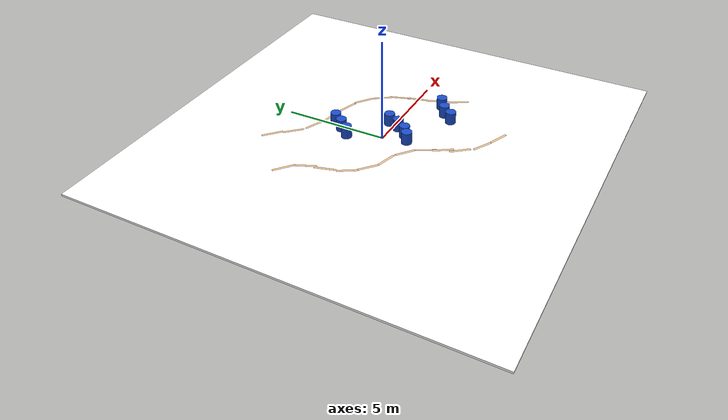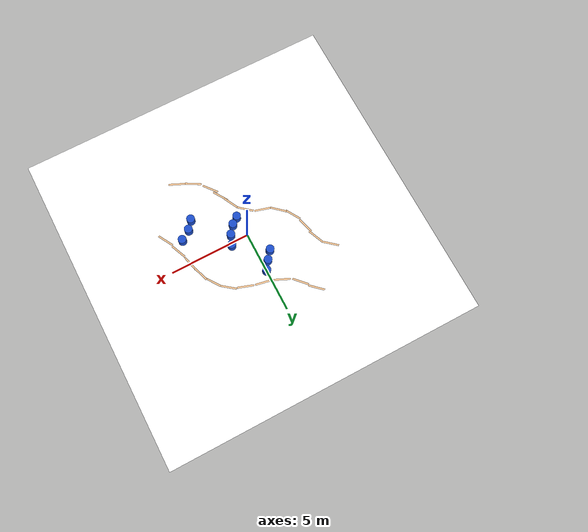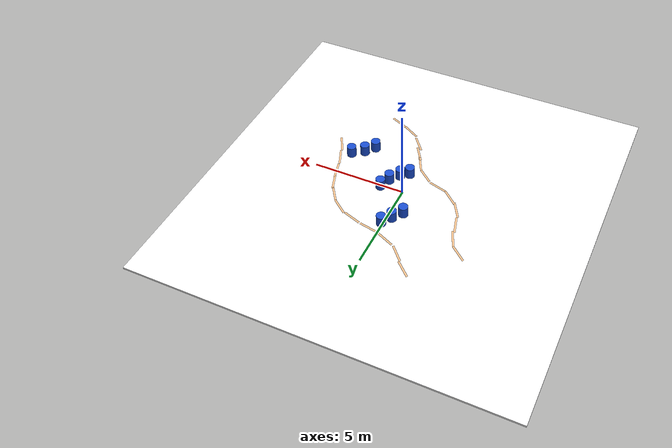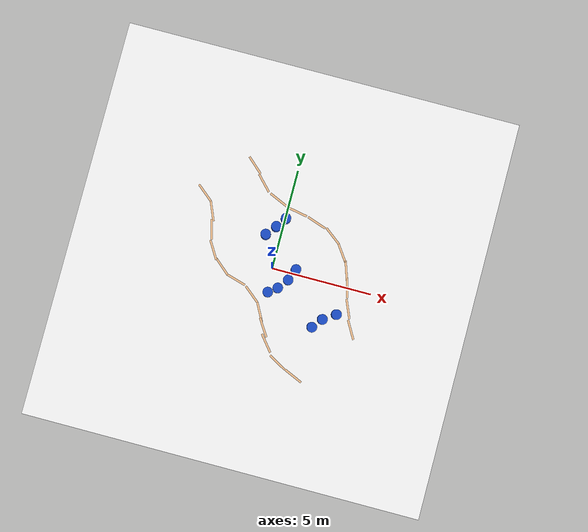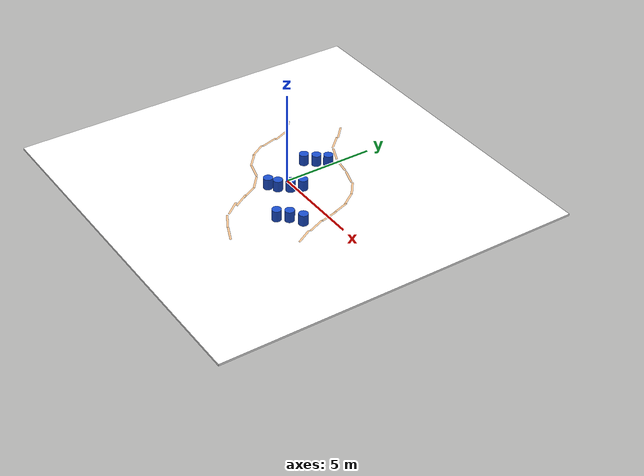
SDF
<sdf version='1.9'>
  <world name='chicane1'>
    <plugin name='ignition::gazebo::systems::Physics' filename='ignition-gazebo-physics-system'/>
    <plugin name='ignition::gazebo::systems::UserCommands' filename='ignition-gazebo-user-commands-system'/>
    <plugin name='ignition::gazebo::systems::SceneBroadcaster' filename='ignition-gazebo-scene-broadcaster-system'/>
    <plugin name='ignition::gazebo::systems::Contact' filename='libignition-gazebo-contact-system.so'/>
    <physics type='ode'>
      <max_step_size>0.001</max_step_size>
      <real_time_update_rate>1000</real_time_update_rate>
      <real_time_factor>1</real_time_factor>
    </physics>
    <scene>
      <ambient>0.1 0.1 0.1 0.1</ambient>
      <background>0.8 0.8 0.8 1</background>
      <grid>true</grid>
      <shadows>true</shadows>
    </scene>
    <gui fullscreen='false'>
      <camera name='user_camera'>
        <pose>-4 -16 4 0 0.3 1.2</pose>
        <view_controller>orbit</view_controller>
      </camera>
    </gui>
    <gravity>0 0 -9.8</gravity>
    <magnetic_field>6e-06 2.3e-05 -4.2e-05</magnetic_field>
    <atmosphere type='adiabatic'/>
    <include>
      <uri>file:///home/andrew/IGVC/ros2_ws/install/littleblue_sim/share/littleblue_sim/worlds/chicane1/custom_models/floor</uri>
      <name>floor</name>
      <pose>0 0 0 0 -0 0</pose>
    </include>
    <include>
      <uri>file:///home/andrew/IGVC/ros2_ws/install/littleblue_sim/share/littleblue_sim/models/barrel</uri>
      <name>barrel_1</name>
      <pose>-0.72731 1.5 0.1 0 -0 0</pose>
    </include>
    <include>
      <uri>file:///home/andrew/IGVC/ros2_ws/install/littleblue_sim/share/littleblue_sim/models/barrel</uri>
      <name>barrel_2</name>
      <pose>-0.326132 2 0.1 0 -0 0</pose>
    </include>
    <include>
      <uri>file:///home/andrew/IGVC/ros2_ws/install/littleblue_sim/share/littleblue_sim/models/barrel</uri>
      <name>barrel_3</name>
      <pose>0.025317 2.5 0.1 0 -0 0</pose>
    </include>
    <include>
      <uri>file:///home/andrew/IGVC/ros2_ws/install/littleblue_sim/share/littleblue_sim/models/barrel</uri>
      <name>barrel_4</name>
      <pose>0.093756 -1.2 0.1 0 -0 0</pose>
    </include>
    <include>
      <uri>file:///home/andrew/IGVC/ros2_ws/install/littleblue_sim/share/littleblue_sim/models/barrel</uri>
      <name>barrel_5</name>
      <pose>0.513101 -0.881516 0.1 0 -0 0</pose>
    </include>
    <include>
      <uri>file:///home/andrew/IGVC/ros2_ws/install/littleblue_sim/share/littleblue_sim/models/barrel</uri>
      <name>barrel_6</name>
      <pose>0.9 -0.375588 0.1 0 -0 0</pose>
    </include>
    <include>
      <uri>file:///home/andrew/IGVC/ros2_ws/install/littleblue_sim/share/littleblue_sim/models/barrel</uri>
      <name>barrel_7</name>
      <pose>1.14 0.210238 0.1 0 -0 0</pose>
    </include>
    <include>
      <uri>file:///home/andrew/IGVC/ros2_ws/install/littleblue_sim/share/littleblue_sim/models/barrel</uri>
      <name>barrel_8</name>
      <pose>3.6 -1.4 0.1 0 -0 0</pose>
    </include>
    <include>
      <uri>file:///home/andrew/IGVC/ros2_ws/install/littleblue_sim/share/littleblue_sim/models/barrel</uri>
      <name>barrel_9</name>
      <pose>3 -1.8 0.1 0 -0 0</pose>
    </include>
    <include>
      <uri>file:///home/andrew/IGVC/ros2_ws/install/littleblue_sim/share/littleblue_sim/models/barrel</uri>
      <name>barrel_10</name>
      <pose>2.6 -2.3 0.1 0 -0 0</pose>
    </include>
    <include>
      <uri>file:///home/andrew/IGVC/ros2_ws/install/littleblue_sim/share/littleblue_sim/models/line_boundary_visible</uri>
      <name>line_boundary_visible</name>
      <pose>-4.16455 2.74478 0 0 0 -0.699013</pose>
    </include>
    <include>
      <uri>file:///home/andrew/IGVC/ros2_ws/install/littleblue_sim/share/littleblue_sim/models/line_boundary_visible</uri>
      <name>line_boundary_visible_0</name>
      <pose>-3.58856 1.9648 0 0 0 -1.17367</pose>
    </include>
    <include>
      <uri>file:///home/andrew/IGVC/ros2_ws/install/littleblue_sim/share/littleblue_sim/models/line_boundary_visible</uri>
      <name>line_boundary_visible_1</name>
      <pose>-3.37367 1.08043 0 0 -0 1.8401</pose>
    </include>
    <include>
      <uri>file:///home/andrew/IGVC/ros2_ws/install/littleblue_sim/share/littleblue_sim/models/line_boundary_visible</uri>
      <name>line_boundary_visible_2</name>
      <pose>-3.0322 0.123837 0 0 0 -1.02475</pose>
    </include>
    <include>
      <uri>file:///home/andrew/IGVC/ros2_ws/install/littleblue_sim/share/littleblue_sim/models/line_boundary_visible</uri>
      <name>line_boundary_visible_3</name>
      <pose>-2.40928 -0.556632 0 0 0 -0.718992</pose>
    </include>
    <include>
      <uri>file:///home/andrew/IGVC/ros2_ws/install/littleblue_sim/share/littleblue_sim/models/line_boundary_visible</uri>
      <name>line_boundary_visible_4</name>
      <pose>-1.56724 -1.00572 0 0 0 -0.277622</pose>
    </include>
    <include>
      <uri>file:///home/andrew/IGVC/ros2_ws/install/littleblue_sim/share/littleblue_sim/models/line_boundary_visible</uri>
      <name>line_boundary_visible_5</name>
      <pose>-0.639546 -1.50721 0 0 0 -0.692112</pose>
    </include>
    <include>
      <uri>file:///home/andrew/IGVC/ros2_ws/install/littleblue_sim/share/littleblue_sim/models/line_boundary_visible</uri>
      <name>line_boundary_visible_6</name>
      <pose>-0.044575 -2.2468 0 0 0 -1.08509</pose>
    </include>
    <include>
      <uri>file:///home/andrew/IGVC/ros2_ws/install/littleblue_sim/share/littleblue_sim/models/line_boundary_visible</uri>
      <name>line_boundary_visible_7</name>
      <pose>0.318058 -2.92661 0 0 0 -0.996431</pose>
    </include>
    <include>
      <uri>file:///home/andrew/IGVC/ros2_ws/install/littleblue_sim/share/littleblue_sim/models/line_boundary_visible</uri>
      <name>line_boundary_visible_8</name>
      <pose>0.651158 -3.62968 0 0 0 -0.889633</pose>
    </include>
    <include>
      <uri>file:///home/andrew/IGVC/ros2_ws/install/littleblue_sim/share/littleblue_sim/models/line_boundary_visible</uri>
      <name>line_boundary_visible_9</name>
      <pose>1.43735 -4.39692 0 0 0 -0.518717</pose>
    </include>
    <include>
      <uri>file:///home/andrew/IGVC/ros2_ws/install/littleblue_sim/share/littleblue_sim/models/line_boundary_visible</uri>
      <name>line_boundary_visible_10</name>
      <pose>2.33859 -4.83281 0 0 0 -0.415417</pose>
    </include>
    <include>
      <uri>file:///home/andrew/IGVC/ros2_ws/install/littleblue_sim/share/littleblue_sim/models/line_boundary_visible</uri>
      <name>line_boundary_visible_11</name>
      <pose>-2.12765 4.69579 0 0 0 -0.740098</pose>
    </include>
    <include>
      <uri>file:///home/andrew/IGVC/ros2_ws/install/littleblue_sim/share/littleblue_sim/models/line_boundary_visible</uri>
      <name>line_boundary_visible_12</name>
      <pose>-1.47274 3.95126 0 0 0 -0.816568</pose>
    </include>
    <include>
      <uri>file:///home/andrew/IGVC/ros2_ws/install/littleblue_sim/share/littleblue_sim/models/line_boundary_visible</uri>
      <name>line_boundary_visible_13</name>
      <pose>-0.56733 3.3395 0 0 0 -0.417039</pose>
    </include>
    <include>
      <uri>file:///home/andrew/IGVC/ros2_ws/install/littleblue_sim/share/littleblue_sim/models/line_boundary_visible</uri>
      <name>line_boundary_visible_14</name>
      <pose>0.488677 2.99908 0 0 0 -0.186282</pose>
    </include>
    <include>
      <uri>file:///home/andrew/IGVC/ros2_ws/install/littleblue_sim/share/littleblue_sim/models/line_boundary_visible</uri>
      <name>line_boundary_visible_15</name>
      <pose>1.53377 2.7292 0 0 0 -0.325198</pose>
    </include>
    <include>
      <uri>file:///home/andrew/IGVC/ros2_ws/install/littleblue_sim/share/littleblue_sim/models/line_boundary_visible</uri>
      <name>line_boundary_visible_16</name>
      <pose>2.45778 2.29692 0 0 0 -0.659267</pose>
    </include>
    <include>
      <uri>file:///home/andrew/IGVC/ros2_ws/install/littleblue_sim/share/littleblue_sim/models/line_boundary_visible</uri>
      <name>line_boundary_visible_17</name>
      <pose>3.09875 1.62091 0 0 0 -0.958344</pose>
    </include>
    <include>
      <uri>file:///home/andrew/IGVC/ros2_ws/install/littleblue_sim/share/littleblue_sim/models/line_boundary_visible</uri>
      <name>line_boundary_visible_18</name>
      <pose>3.54024 0.815193 0 0 0 -1.24416</pose>
    </include>
    <include>
      <uri>file:///home/andrew/IGVC/ros2_ws/install/littleblue_sim/share/littleblue_sim/models/line_boundary_visible</uri>
      <name>line_boundary_visible_19</name>
      <pose>3.79841 0.004867 0 0 0 -1.31834</pose>
    </include>
    <include>
      <uri>file:///home/andrew/IGVC/ros2_ws/install/littleblue_sim/share/littleblue_sim/models/line_boundary_visible</uri>
      <name>line_boundary_visible_20</name>
      <pose>4.09701 -0.982722 0 0 0 -1.17365</pose>
    </include>
    <include>
      <uri>file:///home/andrew/IGVC/ros2_ws/install/littleblue_sim/share/littleblue_sim/models/line_boundary_visible</uri>
      <name>line_boundary_visible_21</name>
      <pose>4.48545 -1.93731 0 0 0 -1.05478</pose>
    </include>
    <light name='sun' type='directional'>
      <pose>0 0 10 0 -0 0</pose>
      <cast_shadows>true</cast_shadows>
      <intensity>1</intensity>
      <direction>-0.5 0.1 -0.9</direction>
      <diffuse>1 1 1 1</diffuse>
      <specular>0.2 0.2 0.2 1</specular>
      <attenuation>
        <range>10</range>
        <linear>1</linear>
        <constant>1</constant>
        <quadratic>0</quadratic>
      </attenuation>
      <spot>
        <inner_angle>0</inner_angle>
        <outer_angle>0</outer_angle>
        <falloff>0</falloff>
      </spot>
    </light>
  </world>
</sdf>

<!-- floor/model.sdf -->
<sdf version="1.6">
  <model name="custom_course">
    <static>true</static>
    <link name="link">
      <collision name="collision">
        <geometry>
          <box>
            <size>20 20 0.1</size> <!-- 20m x 20m wide, 10cm thick -->
          </box>
        </geometry>
      </collision>
      <visual name="visual">
        <geometry>
          <box>
            <size>20 20 0.1</size>
          </box>
        </geometry>
        <material>
          <ambient>1 1 1 1</ambient>
          <diffuse>1 1 1 1</diffuse>
          <specular>0.1 0.1 0.1 1</specular>
          <pbr>
            <metal>
              <albedo_map>floor_textures/curved-lanes.png</albedo_map>
              <roughness>1.0</roughness> <!-- 1.0 = Matte, 0.0 = Mirror -->
              <metalness>0.0</metalness>
            </metal>
          </pbr>
        </material>
      </visual>
    </link>
  </model>
</sdf>

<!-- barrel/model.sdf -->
<sdf version="1.8">
  <model name="barrel">
    <static>true</static>
    <link name="link">
      <collision name="collision">
        <geometry>
          <cylinder>
            <radius>0.25</radius>
            <length>0.6</length>
          </cylinder>
        </geometry>
        <pose>0 0 0.3 0 0 0</pose>
      </collision>
      <visual name="visual">
        <geometry>
          <cylinder>
            <radius>0.25</radius>
            <length>0.6</length>
          </cylinder>
        </geometry>
        <pose>0 0 0.3 0 0 0</pose>
        <material>
          <ambient>0.1 0.3 0.8 1</ambient>
          <diffuse>0.1 0.3 0.8 1</diffuse>
          <specular>0.3 0.3 0.3 1</specular>
        </material>
      </visual>
    </link>
  </model>
</sdf>

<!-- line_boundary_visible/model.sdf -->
<sdf version="1.8">
  <model name="line_boundary_visible">

    <static>true</static>

    <link name="white_line_boundary">
      <collision name="line_collision">
        <pose>0 0 0.1 0 0 0</pose>
        <geometry>
          <box><size>1 0.1 0.01</size></box>
        </geometry>
      </collision>

      <visual name="line_visual">
        <pose>0 0 0.1 0 0 0</pose>
        <geometry>
          <box><size>1 0.1 0.01</size></box>
        </geometry>
        <material>
          <ambient>1.0 0.5 0.0 0.4</ambient>
          <diffuse>1.0 0.5 0.0 0.4</diffuse>
        </material>
      </visual>
    </link>

  </model>
</sdf>
